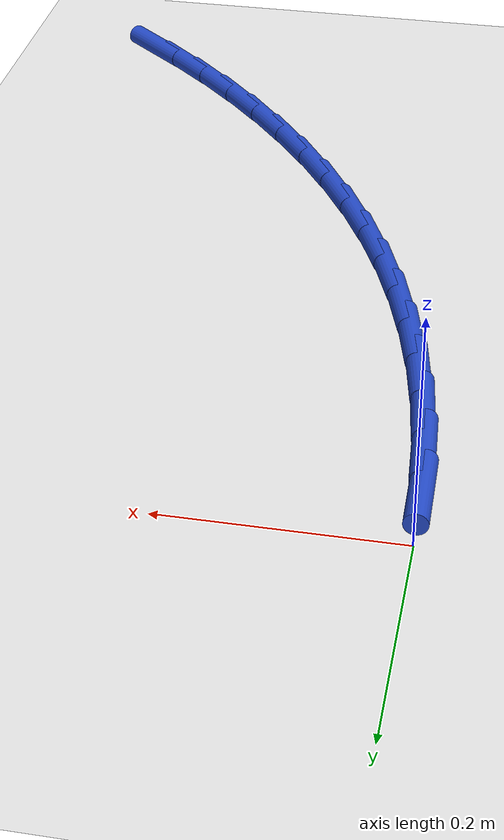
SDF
<sdf version="1.6">
 <world name="default">
  <model name="ground_plane">
   <static>1</static>
   <link name="link">
    <collision name="collision">
     <geometry><plane><normal>0 0 1</normal><size>100 100</size></plane></geometry>
     <surface><friction><ode><mu>100</mu><mu2>50</mu2></ode></friction></surface>
    </collision>
    <visual name="visual">
     <cast_shadows>0</cast_shadows>
     <geometry><plane><normal>0 0 1</normal><size>100 100</size></plane></geometry>
     <material>
      <script><uri>file://media/materials/scripts/gazebo.material</uri><name>Gazebo/WhiteGlow</name></script>
     </material>
    </visual>
   </link>
  </model>
  <model name="line">
   <link name="link_123">
    <pose>0.37891663611487497 -0.783838716563052 0.01 0 1.57 -0.716505651709578</pose>
    <collision name="collision">
     <geometry><cylinder><radius>0.01</radius><length>0.08</length></cylinder></geometry>
    </collision>
    <visual name="visual">
     <material>
      <script><name>Gazebo/Blue</name><uri>file://media/materials/scripts/gazebo.material</uri></script>
     </material>
     <geometry><cylinder><radius>0.01</radius><length>0.08</length></cylinder></geometry>
    </visual>
   </link>
   <link name="link_124">
    <pose>0.3395167047217535 -0.7495251431303562 0.01 0 1.57 -0.7619975591460749</pose>
    <collision name="collision">
     <geometry><cylinder><radius>0.01</radius><length>0.08</length></cylinder></geometry>
    </collision>
    <visual name="visual">
     <material>
      <script><name>Gazebo/Blue</name><uri>file://media/materials/scripts/gazebo.material</uri></script>
     </material>
     <geometry><cylinder><radius>0.01</radius><length>0.08</length></cylinder></geometry>
    </visual>
   </link>
   <link name="link_125">
    <pose>0.3014725356373648 -0.7132210851181185 0.01 0 1.57 -0.8080401909265131</pose>
    <collision name="collision">
     <geometry><cylinder><radius>0.01</radius><length>0.08</length></cylinder></geometry>
    </collision>
    <visual name="visual">
     <material>
      <script><name>Gazebo/Blue</name><uri>file://media/materials/scripts/gazebo.material</uri></script>
     </material>
     <geometry><cylinder><radius>0.01</radius><length>0.08</length></cylinder></geometry>
    </visual>
   </link>
   <link name="link_126">
    <pose>0.2649651897840745 -0.6750219438099561 0.01 0 1.57 -0.8549405208111436</pose>
    <collision name="collision">
     <geometry><cylinder><radius>0.01</radius><length>0.08</length></cylinder></geometry>
    </collision>
    <visual name="visual">
     <material>
      <script><name>Gazebo/Blue</name><uri>file://media/materials/scripts/gazebo.material</uri></script>
     </material>
     <geometry><cylinder><radius>0.01</radius><length>0.08</length></cylinder></geometry>
    </visual>
   </link>
   <link name="link_127">
    <pose>0.23017573243695022 -0.635023133602444 0.01 0 1.57 -0.9029941096157905</pose>
    <collision name="collision">
     <geometry><cylinder><radius>0.01</radius><length>0.08</length></cylinder></geometry>
    </collision>
    <visual name="visual">
     <material>
      <script><name>Gazebo/Blue</name><uri>file://media/materials/scripts/gazebo.material</uri></script>
     </material>
     <geometry><cylinder><radius>0.01</radius><length>0.08</length></cylinder></geometry>
    </visual>
   </link>
   <link name="link_128">
    <pose>0.19728522887105832 -0.5933200688921567 0.01 0 1.57 -0.9524848594244397</pose>
    <collision name="collision">
     <geometry><cylinder><radius>0.01</radius><length>0.08</length></cylinder></geometry>
    </collision>
    <visual name="visual">
     <material>
      <script><name>Gazebo/Blue</name><uri>file://media/materials/scripts/gazebo.material</uri></script>
     </material>
     <geometry><cylinder><radius>0.01</radius><length>0.08</length></cylinder></geometry>
    </visual>
   </link>
   <link name="link_129">
    <pose>0.16647474436146548 -0.5500081640756687 0.01 0 1.57 -1.0036831016503627</pose>
    <collision name="collision">
     <geometry><cylinder><radius>0.01</radius><length>0.08</length></cylinder></geometry>
    </collision>
    <visual name="visual">
     <material>
      <script><name>Gazebo/Blue</name><uri>file://media/materials/scripts/gazebo.material</uri></script>
     </material>
     <geometry><cylinder><radius>0.01</radius><length>0.08</length></cylinder></geometry>
    </visual>
   </link>
   <link name="link_130">
    <pose>0.13792534418323843 -0.5051828335495543 0.01 0 1.57 -1.0568415818828993</pose>
    <collision name="collision">
     <geometry><cylinder><radius>0.01</radius><length>0.08</length></cylinder></geometry>
    </collision>
    <visual name="visual">
     <material>
      <script><name>Gazebo/Blue</name><uri>file://media/materials/scripts/gazebo.material</uri></script>
     </material>
     <geometry><cylinder><radius>0.01</radius><length>0.08</length></cylinder></geometry>
    </visual>
   </link>
   <link name="link_131">
    <pose>0.11181809361144363 -0.4589394917103874 0.01 0 1.57 -1.1121334728247056</pose>
    <collision name="collision">
     <geometry><cylinder><radius>0.01</radius><length>0.08</length></cylinder></geometry>
    </collision>
    <visual name="visual">
     <material>
      <script><name>Gazebo/Blue</name><uri>file://media/materials/scripts/gazebo.material</uri></script>
     </material>
     <geometry><cylinder><radius>0.01</radius><length>0.08</length></cylinder></geometry>
    </visual>
   </link>
   <link name="link_132">
    <pose>0.08833121890512137 -0.4113744610316316 0.01 0 1.57 -1.1682630146371544</pose>
    <collision name="collision">
     <geometry><cylinder><radius>0.01</radius><length>0.08</length></cylinder></geometry>
    </collision>
    <visual name="visual">
     <material>
      <script><name>Gazebo/Blue</name><uri>file://media/materials/scripts/gazebo.material</uri></script>
     </material>
     <geometry><cylinder><radius>0.01</radius><length>0.08</length></cylinder></geometry>
    </visual>
   </link>
   <link name="link_133">
    <pose>0.06756740564337091 -0.3626082261418225 0.01 0 1.57 -1.223743918492566</pose>
    <collision name="collision">
     <geometry><cylinder><radius>0.01</radius><length>0.08</length></cylinder></geometry>
    </collision>
    <visual name="visual">
     <material>
      <script><name>Gazebo/Blue</name><uri>file://media/materials/scripts/gazebo.material</uri></script>
     </material>
     <geometry><cylinder><radius>0.01</radius><length>0.08</length></cylinder></geometry>
    </visual>
   </link>
   <link name="link_134">
    <pose>0.049547627651205205 -0.31278740768091806 0.01 0 1.57 -1.278605402003932</pose>
    <collision name="collision">
     <geometry><cylinder><radius>0.01</radius><length>0.08</length></cylinder></geometry>
    </collision>
    <visual name="visual">
     <material>
      <script><name>Gazebo/Blue</name><uri>file://media/materials/scripts/gazebo.material</uri></script>
     </material>
     <geometry><cylinder><radius>0.01</radius><length>0.08</length></cylinder></geometry>
    </visual>
   </link>
   <link name="link_135">
    <pose>0.03428878313649026 -0.2620599299003017 0.01 0 1.57 -1.3329694490253807</pose>
    <collision name="collision">
     <geometry><cylinder><radius>0.01</radius><length>0.08</length></cylinder></geometry>
    </collision>
    <visual name="visual">
     <material>
      <script><name>Gazebo/Blue</name><uri>file://media/materials/scripts/gazebo.material</uri></script>
     </material>
     <geometry><cylinder><radius>0.01</radius><length>0.08</length></cylinder></geometry>
    </visual>
   </link>
   <link name="link_136">
    <pose>0.021807770307092803 -0.21057371705135908 0.01 0 1.57 -1.3869676510309519</pose>
    <collision name="collision">
     <geometry><cylinder><radius>0.01</radius><length>0.08</length></cylinder></geometry>
    </collision>
    <visual name="visual">
     <material>
      <script><name>Gazebo/Blue</name><uri>file://media/materials/scripts/gazebo.material</uri></script>
     </material>
     <geometry><cylinder><radius>0.01</radius><length>0.08</length></cylinder></geometry>
    </visual>
   </link>
   <link name="link_137">
    <pose>0.012121487370878793 -0.15847669338547343 0.01 0 1.57 -1.440738092347209</pose>
    <collision name="collision">
     <geometry><cylinder><radius>0.01</radius><length>0.08</length></cylinder></geometry>
    </collision>
    <visual name="visual">
     <material>
      <script><name>Gazebo/Blue</name><uri>file://media/materials/scripts/gazebo.material</uri></script>
     </material>
     <geometry><cylinder><radius>0.01</radius><length>0.08</length></cylinder></geometry>
    </visual>
   </link>
   <link name="link_138">
    <pose>0.005246832535714494 -0.10591678315402903 0.01 0 1.57 -1.4944224597364026</pose>
    <collision name="collision">
     <geometry><cylinder><radius>0.01</radius><length>0.08</length></cylinder></geometry>
    </collision>
    <visual name="visual">
     <material>
      <script><name>Gazebo/Blue</name><uri>file://media/materials/scripts/gazebo.material</uri></script>
     </material>
     <geometry><cylinder><radius>0.01</radius><length>0.08</length></cylinder></geometry>
    </visual>
   </link>
   <link name="link_139">
    <pose>0.0012007040094661452 -0.053041910608409994 0.01 0 1.57 -1.5481633000633188</pose>
    <collision name="collision">
     <geometry><cylinder><radius>0.01</radius><length>0.08</length></cylinder></geometry>
    </collision>
    <visual name="visual">
     <material>
      <script><name>Gazebo/Blue</name><uri>file://media/materials/scripts/gazebo.material</uri></script>
     </material>
     <geometry><cylinder><radius>0.01</radius><length>0.08</length></cylinder></geometry>
    </visual>
   </link>
  </model>
 </world>
</sdf>
